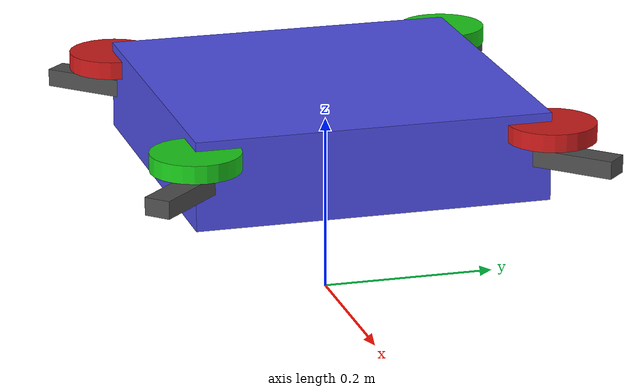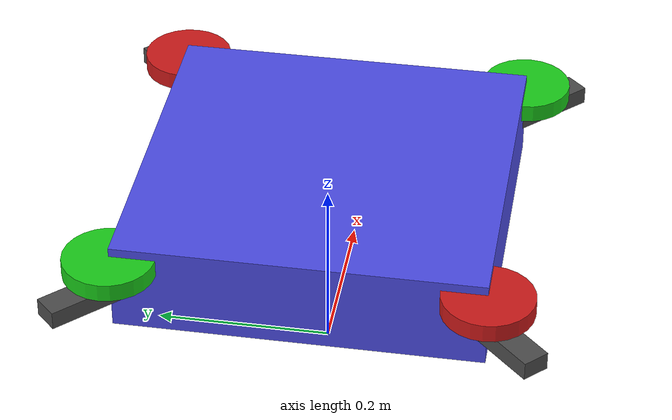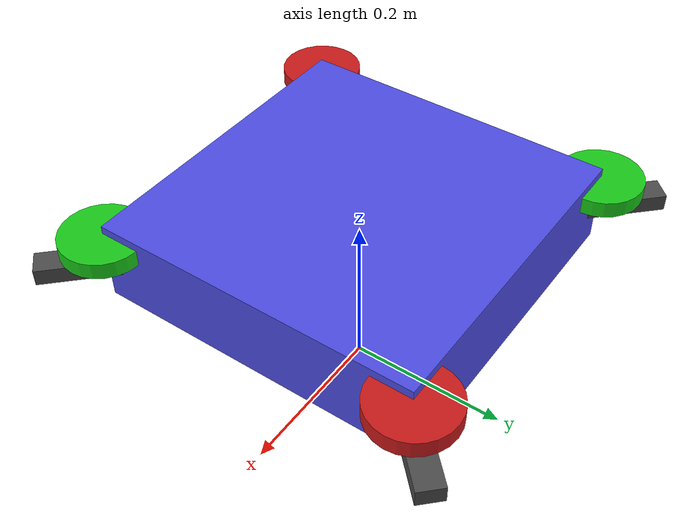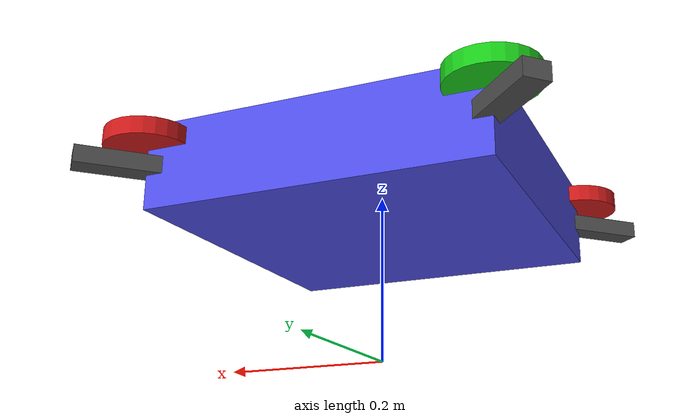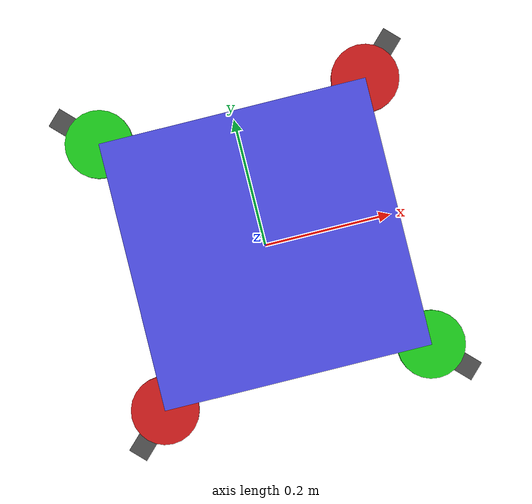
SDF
<?xml version="1.0" ?>
<sdf version="1.8">
  <model name="quadcopter">
    <pose>0 0 0.2 0 0 0</pose>

    <link name="base_link">
      <inertial>
        <mass>1.5</mass>
        <inertia>
          <ixx>0.015</ixx>
          <iyy>0.015</iyy>
          <izz>0.025</izz>
        </inertia>
      </inertial>

      <!-- Body -->
      <collision name="body_collision">
        <geometry>
          <box><size>0.4 0.4 0.1</size></box>
        </geometry>
      </collision>
      <visual name="body_visual">
        <geometry>
          <box><size>0.4 0.4 0.1</size></box>
        </geometry>
        <material>
          <ambient>0.2 0.2 0.8 1</ambient>
          <diffuse>0.3 0.3 0.9 1</diffuse>
        </material>
      </visual>

      <!-- Arms and motors visuals -->
      <visual name="arm1">
        <pose>0.15 0.15 0 0 0 0.785</pose>
        <geometry><box><size>0.3 0.03 0.02</size></box></geometry>
        <material><diffuse>0.3 0.3 0.3 1</diffuse></material>
      </visual>
      <visual name="arm2">
        <pose>-0.15 0.15 0 0 0 -0.785</pose>
        <geometry><box><size>0.3 0.03 0.02</size></box></geometry>
        <material><diffuse>0.3 0.3 0.3 1</diffuse></material>
      </visual>
      <visual name="arm3">
        <pose>-0.15 -0.15 0 0 0 0.785</pose>
        <geometry><box><size>0.3 0.03 0.02</size></box></geometry>
        <material><diffuse>0.3 0.3 0.3 1</diffuse></material>
      </visual>
      <visual name="arm4">
        <pose>0.15 -0.15 0 0 0 -0.785</pose>
        <geometry><box><size>0.3 0.03 0.02</size></box></geometry>
        <material><diffuse>0.3 0.3 0.3 1</diffuse></material>
      </visual>

      <visual name="motor1">
        <pose>0.2 0.2 0.03 0 0 0</pose>
        <geometry><cylinder><radius>0.05</radius><length>0.02</length></cylinder></geometry>
        <material><diffuse>0.8 0.1 0.1 1</diffuse></material>
      </visual>
      <visual name="motor2">
        <pose>-0.2 0.2 0.03 0 0 0</pose>
        <geometry><cylinder><radius>0.05</radius><length>0.02</length></cylinder></geometry>
        <material><diffuse>0.1 0.8 0.1 1</diffuse></material>
      </visual>
      <visual name="motor3">
        <pose>-0.2 -0.2 0.03 0 0 0</pose>
        <geometry><cylinder><radius>0.05</radius><length>0.02</length></cylinder></geometry>
        <material><diffuse>0.8 0.1 0.1 1</diffuse></material>
      </visual>
      <visual name="motor4">
        <pose>0.2 -0.2 0.03 0 0 0</pose>
        <geometry><cylinder><radius>0.05</radius><length>0.02</length></cylinder></geometry>
        <material><diffuse>0.1 0.8 0.1 1</diffuse></material>
      </visual>
    </link>

    <!-- Velocity control plugin -->
    <plugin filename="gz-sim-velocity-control-system" name="gz::sim::systems::VelocityControl">
      <initial_linear>0 0 0</initial_linear>
    </plugin>

    <!-- Pose publisher for feedback -->
    <plugin filename="gz-sim-pose-publisher-system" name="gz::sim::systems::PosePublisher">
      <publish_link_pose>true</publish_link_pose>
      <publish_model_pose>true</publish_model_pose>
      <update_frequency>30</update_frequency>
    </plugin>

  </model>
</sdf>
